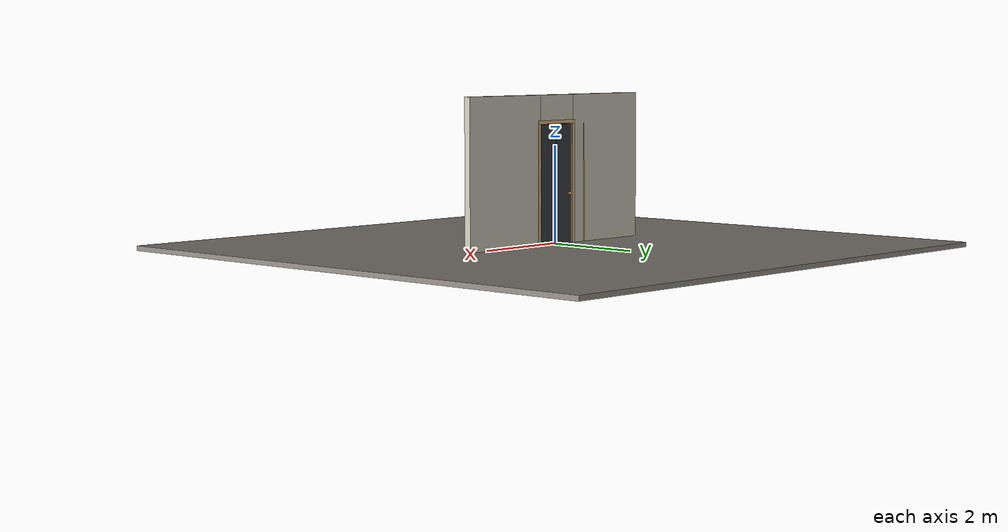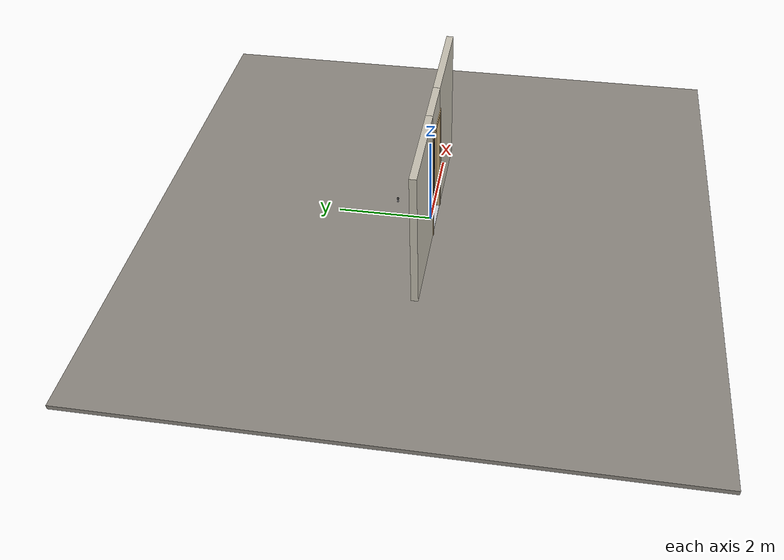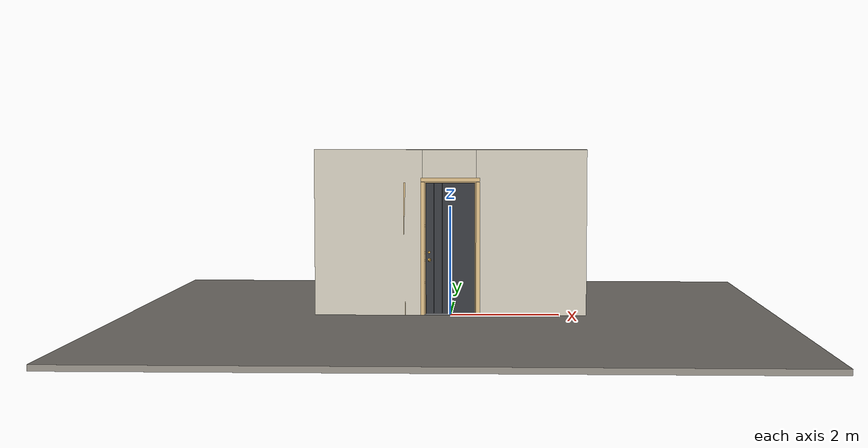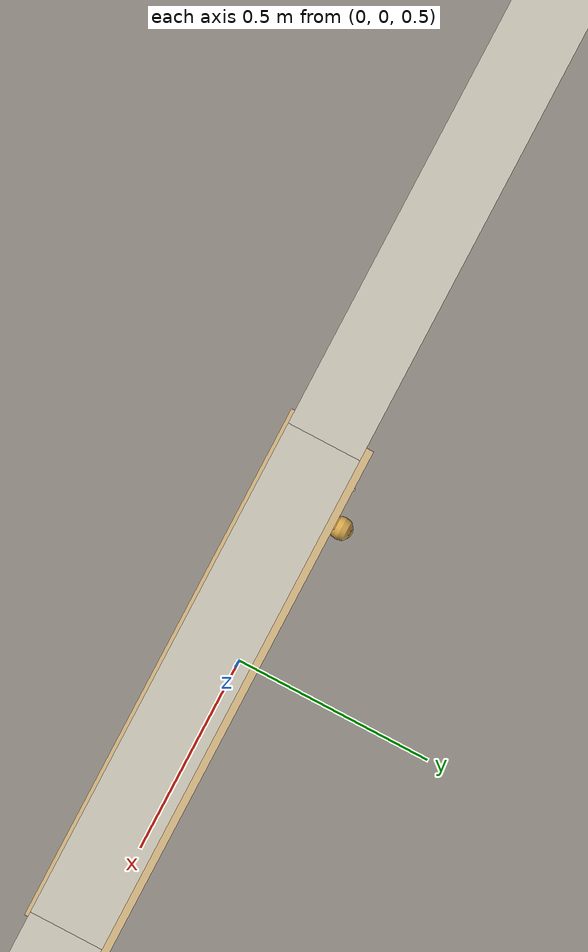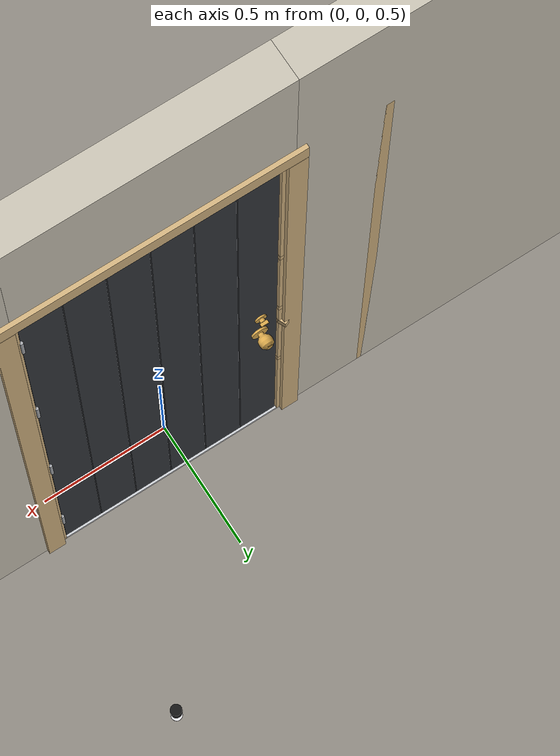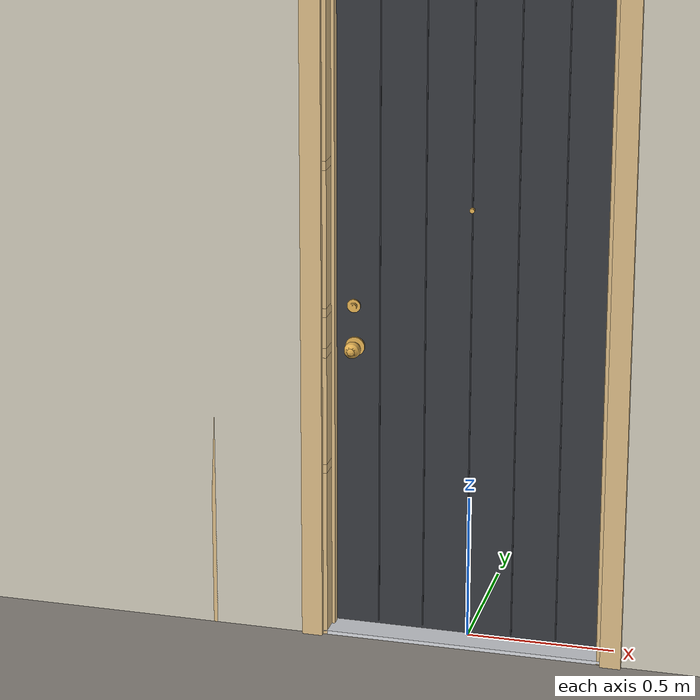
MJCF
<?xml version="1.0" ?>
<mujoco model="db0808_swing_single_full">
  <compiler angle="radian" meshdir="../../hardware" texturedir="../../textures" autolimits="true" inertiafromgeom="false"/>
  <option timestep="0.002" integrator="implicitfast" cone="elliptic" impratio="10" noslip_iterations="3">
    <flag multiccd="enable"/>
  </option>
  <size memory="16M"/>
  <default>
    <geom condim="4" solref="0.005 1" solimp="0.95 0.99 0.001"/>
    <joint solreflimit="0.005 1" solimplimit="0.95 0.99 0.001"/>
    <tendon solreflimit="0.005 1"/>
    <equality solref="0.002 1"/>
  </default>
  <visual>
    <headlight ambient="0.4 0.4 0.4" diffuse="0.7 0.7 0.7" specular="0.2 0.2 0.2"/>
    <quality shadowsize="4096"/>
    <map znear="0.01" zfar="60"/>
  </visual>
  <asset>
    <mesh name="cyl_face_e9e5036966" file="cyl_face_e9e5036966.obj"/>
    <mesh name="hinge_2af0f4d6ca" file="hinge_2af0f4d6ca.obj"/>
    <mesh name="hinge_jamb_c0c0a62ada" file="hinge_jamb_c0c0a62ada.obj"/>
    <mesh name="knob_d1888f6f03" file="knob_d1888f6f03.obj"/>
    <mesh name="peephole_f829311a59" file="peephole_f829311a59.obj"/>
    <mesh name="thumbturn_eb5c9899a3" file="thumbturn_eb5c9899a3.obj"/>
    <material name="mat_floor" rgba="0.55 0.53 0.5 1" specular="0.2" shininess="0.15" reflectance="0"/>
    <material name="mat_wall" rgba="0.78 0.76 0.7 1" specular="0.2" shininess="0.1" reflectance="0"/>
    <material name="mat_leaf" rgba="0.2 0.21 0.23 1" specular="0.2" shininess="0.61" reflectance="0"/>
    <material name="mat_leaf_brace" rgba="0.18 0.189 0.207 1" specular="0.2" shininess="0.2" reflectance="0"/>
    <material name="mat_hinge" rgba="0.65 0.66 0.68 1" specular="0.74" shininess="0.5" reflectance="0.36"/>
    <material name="mat_op_brass" rgba="0.85 0.66 0.3 1" specular="0.8" shininess="0.75" reflectance="0.4"/>
    <material name="mat_trim" rgba="0.85 0.66 0.3 1" specular="0.8" shininess="0.75" reflectance="0.4"/>
    <material name="mat_bolt" rgba="0.85 0.66 0.3 1" specular="0.8" shininess="0.75" reflectance="0.4"/>
    <material name="mat_deadbolt" rgba="0.85 0.66 0.3 1" specular="0.8" shininess="0.75" reflectance="0.4"/>
    <material name="mat_frame" rgba="0.82 0.7 0.5 1" specular="0.2" shininess="0.45" reflectance="0"/>
    <material name="mat_seal" rgba="0.1 0.1 0.1 1" specular="0.2" shininess="0.1" reflectance="0"/>
    <material name="mat_threshold" rgba="0.8 0.81 0.83 1" specular="0.8" shininess="0.6" reflectance="0.4"/>
    <material name="mat_peephole" rgba="0.85 0.66 0.3 1" specular="0.8" shininess="0.75" reflectance="0.4"/>
    <material name="mat_sidelite" rgba="0.85 0.92 0.95 0.25" specular="0.2" shininess="0.95" reflectance="0.1"/>
    <material name="mat_bumper_stop" rgba="0.08 0.08 0.08 1" specular="0.2" shininess="0.1" reflectance="0"/>
    <material name="mat_stop_base" rgba="0.9 0.9 0.92 1" specular="0.8" shininess="0.9" reflectance="0.4"/>
    <texture name="skybox" type="skybox" builtin="gradient" rgb1="0.6 0.7 0.85" rgb2="0.9 0.92 0.95" width="256" height="256"/>
  </asset>
  <worldbody>
    <light name="sun" pos="1.5 -2.5 4" dir="-0.3 0.5 -0.8" directional="true" diffuse="0.8 0.8 0.8" specular="0.3 0.3 0.3" castshadow="true"/>
    <light name="fill" pos="-1.5 2.5 3" dir="0.3 -0.5 -0.7" directional="true" diffuse="0.35 0.35 0.4" castshadow="false"/>
    <camera name="robot_view" pos="0 -2.966312 2.043887" xyaxes="1 0 0 0 0.26963 0.962964" fovy="52"/>
    <camera name="far_view" pos="0 2.879313 2.043887" xyaxes="-1 0 0 0 -0.26963 0.962964" fovy="52"/>
    <camera name="iso" pos="-2.221337 -2.498663 2.511538" xyaxes="0.741536 -0.670913 0 0.242917 0.268487 0.932151" fovy="46"/>
    <camera name="detail_handle" pos="-0.2065 -0.8685 1.296" xyaxes="0.97561 0.219512 0 -0.070934 0.315262 0.94635" fovy="38"/>
    <geom name="floor" type="box" size="6 6 0.05" pos="0 0 -0.05" material="mat_floor" group="0" contype="1" conaffinity="1" friction="0.8 0.005 0.0001" density="2400"/>
    <geom name="wall_left" type="box" size="0.99525 0.0725 1.5255" pos="-1.50475 -0.0435 1.5255" material="mat_wall" group="0" contype="1" conaffinity="1" friction="0.6 0.005 0.0001" density="800"/>
    <geom name="wall_right" type="box" size="1.01025 0.0725 1.5255" pos="1.48975 -0.0435 1.5255" material="mat_wall" group="0" contype="1" conaffinity="1" friction="0.6 0.005 0.0001" density="800"/>
    <geom name="wall_header" type="box" size="0.4945 0.0725 0.2755" pos="-0.015 -0.0435 2.7755" material="mat_wall" group="0" contype="1" conaffinity="1" friction="0.6 0.005 0.0001" density="800"/>
    <geom name="hinge_0_jamb" type="mesh" mesh="hinge_jamb_c0c0a62ada" pos="0.4575 0.029 0.267" quat="0 0 0 1" material="mat_hinge" group="1" contype="0" conaffinity="0" density="7850"/>
    <geom name="hinge_1_jamb" type="mesh" mesh="hinge_jamb_c0c0a62ada" pos="0.4575 0.029 0.933667" quat="0 0 0 1" material="mat_hinge" group="1" contype="0" conaffinity="0" density="7850"/>
    <geom name="hinge_2_jamb" type="mesh" mesh="hinge_jamb_c0c0a62ada" pos="0.4575 0.029 1.600333" quat="0 0 0 1" material="mat_hinge" group="1" contype="0" conaffinity="0" density="7850"/>
    <geom name="hinge_3_jamb" type="mesh" mesh="hinge_jamb_c0c0a62ada" pos="0.4575 0.029 2.267" quat="0 0 0 1" material="mat_hinge" group="1" contype="0" conaffinity="0" density="7850"/>
    <geom name="leaf_deadbolt_strike_b" type="box" size="0.0155 0.003 0.0005" pos="-0.46 0 1.1375" quat="0.5 0.5 0.5 0.5" material="mat_deadbolt" group="1" contype="0" conaffinity="0" density="7800"/>
    <geom name="leaf_deadbolt_strike_l" type="box" size="0.003 0.0155 0.0005" pos="-0.46 -0.0125 1.156" quat="0.5 0.5 0.5 0.5" material="mat_deadbolt" group="1" contype="0" conaffinity="0" density="7800"/>
    <geom name="leaf_deadbolt_strike_t" type="box" size="0.0155 0.003 0.0005" pos="-0.46 0 1.1745" quat="0.5 0.5 0.5 0.5" material="mat_deadbolt" group="1" contype="0" conaffinity="0" density="7800"/>
    <geom name="leaf_deadbolt_strike_r" type="box" size="0.003 0.0155 0.0005" pos="-0.46 0.0125 1.156" quat="0.5 0.5 0.5 0.5" material="mat_deadbolt" group="1" contype="0" conaffinity="0" density="7800"/>
    <geom name="leaf_multipoint_upper_strike_b" type="box" size="0.0155 0.003 0.0005" pos="-0.46 0 1.6375" quat="0.5 0.5 0.5 0.5" material="mat_deadbolt" group="1" contype="0" conaffinity="0" density="7800"/>
    <geom name="leaf_multipoint_upper_strike_l" type="box" size="0.003 0.0155 0.0005" pos="-0.46 -0.0125 1.656" quat="0.5 0.5 0.5 0.5" material="mat_deadbolt" group="1" contype="0" conaffinity="0" density="7800"/>
    <geom name="leaf_multipoint_upper_strike_t" type="box" size="0.0155 0.003 0.0005" pos="-0.46 0 1.6745" quat="0.5 0.5 0.5 0.5" material="mat_deadbolt" group="1" contype="0" conaffinity="0" density="7800"/>
    <geom name="leaf_multipoint_upper_strike_r" type="box" size="0.003 0.0155 0.0005" pos="-0.46 0.0125 1.656" quat="0.5 0.5 0.5 0.5" material="mat_deadbolt" group="1" contype="0" conaffinity="0" density="7800"/>
    <geom name="leaf_multipoint_lower_strike_b" type="box" size="0.0155 0.003 0.0005" pos="-0.46 0 0.5875" quat="0.5 0.5 0.5 0.5" material="mat_deadbolt" group="1" contype="0" conaffinity="0" density="7800"/>
    <geom name="leaf_multipoint_lower_strike_l" type="box" size="0.003 0.0155 0.0005" pos="-0.46 -0.0125 0.606" quat="0.5 0.5 0.5 0.5" material="mat_deadbolt" group="1" contype="0" conaffinity="0" density="7800"/>
    <geom name="leaf_multipoint_lower_strike_t" type="box" size="0.0155 0.003 0.0005" pos="-0.46 0 0.6245" quat="0.5 0.5 0.5 0.5" material="mat_deadbolt" group="1" contype="0" conaffinity="0" density="7800"/>
    <geom name="leaf_multipoint_lower_strike_r" type="box" size="0.003 0.0155 0.0005" pos="-0.46 0.0125 0.606" quat="0.5 0.5 0.5 0.5" material="mat_deadbolt" group="1" contype="0" conaffinity="0" density="7800"/>
    <geom name="jamb_hinge" type="box" size="0.0095 0.0725 1.2255" pos="0.47 -0.0435 1.2255" material="mat_frame" group="0" contype="1" conaffinity="1" friction="0.6 0.005 0.0001" density="400"/>
    <geom name="strike_606_wall_n" type="box" size="0.0245 0.05325 0.0155" pos="-0.485 -0.06275 0.606" material="mat_frame" group="0" contype="1" conaffinity="1" friction="0.6 0.005 0.0001" density="400"/>
    <geom name="strike_606_wall_p" type="box" size="0.0245 0.00975 0.0155" pos="-0.485 0.01925 0.606" material="mat_frame" group="0" contype="1" conaffinity="1" friction="0.6 0.005 0.0001" density="400"/>
    <geom name="strike_606_back" type="box" size="0.0125 0.0095 0.0155" pos="-0.497 0 0.606" material="mat_frame" group="0" contype="1" conaffinity="1" friction="0.6 0.005 0.0001" density="400"/>
    <geom name="strike_1016_wall_n" type="box" size="0.0245 0.054075 0.0167" pos="-0.485 -0.061925 1.016" material="mat_frame" group="0" contype="1" conaffinity="1" friction="0.6 0.005 0.0001" density="400"/>
    <geom name="strike_1016_wall_p" type="box" size="0.0245 0.008 0.0167" pos="-0.485 0.01585 1.016" material="mat_frame" group="0" contype="1" conaffinity="1" friction="0.6 0.005 0.0001" density="400"/>
    <geom name="strike_1016_ramp" type="box" size="0.0245 0.01649 0.0167" pos="-0.489636 0.028673 1.016" quat="0.977148 0 0 0.212558" material="mat_frame" group="0" contype="1" conaffinity="1" friction="0.12 0.005 0.0001" density="400"/>
    <geom name="strike_1016_back" type="box" size="0.01615 0.00785 0.0167" pos="-0.49335 0 1.016" material="mat_frame" group="0" contype="1" conaffinity="1" friction="0.6 0.005 0.0001" density="400"/>
    <geom name="strike_1156_wall_n" type="box" size="0.0245 0.05325 0.0155" pos="-0.485 -0.06275 1.156" material="mat_frame" group="0" contype="1" conaffinity="1" friction="0.6 0.005 0.0001" density="400"/>
    <geom name="strike_1156_wall_p" type="box" size="0.0245 0.00975 0.0155" pos="-0.485 0.01925 1.156" material="mat_frame" group="0" contype="1" conaffinity="1" friction="0.6 0.005 0.0001" density="400"/>
    <geom name="strike_1156_back" type="box" size="0.0125 0.0095 0.0155" pos="-0.497 0 1.156" material="mat_frame" group="0" contype="1" conaffinity="1" friction="0.6 0.005 0.0001" density="400"/>
    <geom name="strike_1656_wall_n" type="box" size="0.0245 0.05325 0.0155" pos="-0.485 -0.06275 1.656" material="mat_frame" group="0" contype="1" conaffinity="1" friction="0.6 0.005 0.0001" density="400"/>
    <geom name="strike_1656_wall_p" type="box" size="0.0245 0.00975 0.0155" pos="-0.485 0.01925 1.656" material="mat_frame" group="0" contype="1" conaffinity="1" friction="0.6 0.005 0.0001" density="400"/>
    <geom name="strike_1656_back" type="box" size="0.0125 0.0095 0.0155" pos="-0.497 0 1.656" material="mat_frame" group="0" contype="1" conaffinity="1" friction="0.6 0.005 0.0001" density="400"/>
    <geom name="jamb_strike_0" type="box" size="0.0245 0.0725 0.29525" pos="-0.485 -0.0435 0.29525" material="mat_frame" group="0" contype="1" conaffinity="1" friction="0.6 0.005 0.0001" density="400"/>
    <geom name="jamb_strike_1" type="box" size="0.0245 0.0725 0.1889" pos="-0.485 -0.0435 0.8104" material="mat_frame" group="0" contype="1" conaffinity="1" friction="0.6 0.005 0.0001" density="400"/>
    <geom name="jamb_strike_2" type="box" size="0.0245 0.0725 0.0539" pos="-0.485 -0.0435 1.0866" material="mat_frame" group="0" contype="1" conaffinity="1" friction="0.6 0.005 0.0001" density="400"/>
    <geom name="jamb_strike_3" type="box" size="0.0245 0.0725 0.2345" pos="-0.485 -0.0435 1.406" material="mat_frame" group="0" contype="1" conaffinity="1" friction="0.6 0.005 0.0001" density="400"/>
    <geom name="jamb_strike_4" type="box" size="0.0245 0.0725 0.38975" pos="-0.485 -0.0435 2.06125" material="mat_frame" group="0" contype="1" conaffinity="1" friction="0.6 0.005 0.0001" density="400"/>
    <geom name="jamb_head" type="box" size="0.4945 0.0725 0.0095" pos="-0.015 -0.0435 2.4605" material="mat_frame" group="0" contype="1" conaffinity="1" friction="0.6 0.005 0.0001" density="400"/>
    <geom name="head_stud" type="box" size="0.4945 0.0725 0.015" pos="-0.015 -0.0435 2.485" material="mat_wall" group="0" contype="1" conaffinity="1" friction="0.6 0.005 0.0001" density="500"/>
    <geom name="stop_hinge" type="box" size="0.0055 0.016 1.2255" pos="0.455 -0.0385 1.2255" material="mat_frame" group="0" contype="1" conaffinity="1" friction="0.6 0.005 0.0001" density="400"/>
    <geom name="stop_strike" type="box" size="0.0055 0.016 1.2255" pos="-0.455 -0.0385 1.2255" material="mat_frame" group="0" contype="1" conaffinity="1" friction="0.6 0.005 0.0001" density="400"/>
    <geom name="stop_head" type="box" size="0.4605 0.016 0.0055" pos="0 -0.0385 2.4455" material="mat_frame" group="0" contype="1" conaffinity="1" friction="0.6 0.005 0.0001" density="400"/>
    <geom name="seal_hinge" type="box" size="0.004 0.0015 1.2255" pos="0.4575 -0.0235 1.2255" material="mat_seal" group="1" contype="0" conaffinity="0" density="1100"/>
    <geom name="seal_strike" type="box" size="0.004 0.0015 1.2255" pos="-0.4575 -0.0235 1.2255" material="mat_seal" group="1" contype="0" conaffinity="0" density="1100"/>
    <geom name="seal_head" type="box" size="0.4405 0.0015 0.008" pos="0 -0.0235 2.439" material="mat_seal" group="1" contype="0" conaffinity="0" density="1100"/>
    <geom name="casing_l_n" type="box" size="0.035 0.008 1.235" pos="-0.5095 -0.124 1.2255" material="mat_frame" group="2" contype="0" conaffinity="0" density="400"/>
    <geom name="casing_r_n" type="box" size="0.035 0.008 1.235" pos="0.5095 -0.124 1.2255" material="mat_frame" group="2" contype="0" conaffinity="0" density="400"/>
    <geom name="casing_h_n" type="box" size="0.5445 0.008 0.035" pos="0 -0.124 2.5" material="mat_frame" group="2" contype="0" conaffinity="0" density="400"/>
    <geom name="casing_l_p" type="box" size="0.035 0.008 1.235" pos="-0.5095 0.037 1.2255" material="mat_frame" group="2" contype="0" conaffinity="0" density="400"/>
    <geom name="casing_r_p" type="box" size="0.035 0.008 1.235" pos="0.5095 0.037 1.2255" material="mat_frame" group="2" contype="0" conaffinity="0" density="400"/>
    <geom name="casing_h_p" type="box" size="0.5445 0.008 0.035" pos="0 0.037 2.5" material="mat_frame" group="2" contype="0" conaffinity="0" density="400"/>
    <geom name="threshold" type="box" size="0.4795 0.0725 0.0065" pos="0 -0.0435 0.0065" material="mat_threshold" group="0" contype="1" conaffinity="1" friction="0.5 0.005 0.0001" density="2700"/>
    <geom name="sidelite_glass" type="box" size="0.15 0.003 1.1755" pos="-0.6705 0 1.2255" material="mat_sidelite" group="0" contype="1" conaffinity="1" friction="0.6 0.005 0.0001" density="2500"/>
    <geom name="sidelite_frame" type="box" size="0.02 0.0725 1.2255" pos="-0.8405 -0.0435 1.2255" material="mat_frame" group="0" contype="1" conaffinity="1" friction="0.6 0.005 0.0001" density="600"/>
    <geom name="door_stop_base" type="cylinder" size="0.022 0.003" pos="0.4745 0.8059 0.003" material="mat_stop_base" group="0" contype="1" conaffinity="1" friction="0.6 0.005 0.0001" density="7850"/>
    <geom name="door_stop_post" type="cylinder" size="0.012 0.0255" pos="0.4745 0.8059 0.0315" material="mat_stop_base" group="0" contype="1" conaffinity="1" friction="0.6 0.005 0.0001" density="7850"/>
    <geom name="door_stop_bumper" type="cylinder" size="0.022 0.02" pos="0.4745 0.8059 0.077" material="mat_bumper_stop" group="0" contype="1" conaffinity="1" friction="0.6 0.005 0.0001" density="1100"/>
    <site name="approach_point" pos="0 -1.5 0" quat="1 0 0 0" size="0.05" rgba="0.2 0.9 0.2 0.5" group="4"/>
    <site name="goal_point" pos="0 1.5 0" quat="1 0 0 0" size="0.05" rgba="0.2 0.9 0.2 0.5" group="4"/>
    <site name="door_plane_center" pos="0 0 1.2255" quat="1 0 0 0" size="0.02" rgba="0.2 0.9 0.2 0.5" group="4"/>
    <body name="leaf" pos="0.4605 0 0">
      <inertial pos="-0.457914 0.000186 1.232387" mass="33.066064" quat="0.500286 0.499112 0.500875 -0.499725" diaginertia="2.458109446 16.23217771 18.679150518"/>
      <joint name="leaf_hinge" type="hinge" axis="0 0 -1" pos="-0.003 0.029 0" limited="true" range="0 1.570796" solreflimit="0.02 1" damping="0.357281" frictionloss="1.054164" armature="0.02"/>
      <geom name="leaf_slab" type="box" size="0.457 0.022 1.215" pos="-0.46 0 1.232" material="mat_leaf" group="0" contype="1" conaffinity="1" friction="0.4 0.005 0.0001" density="1"/>
      <geom name="leaf_plank_gap_1" type="box" size="0.002 0.023 1.205" pos="-0.155333 0 1.232" material="mat_leaf_brace" group="1" contype="0" conaffinity="0" density="1"/>
      <geom name="leaf_plank_gap_2" type="box" size="0.002 0.023 1.205" pos="-0.307667 0 1.232" material="mat_leaf_brace" group="1" contype="0" conaffinity="0" density="1"/>
      <geom name="leaf_plank_gap_3" type="box" size="0.002 0.023 1.205" pos="-0.46 0 1.232" material="mat_leaf_brace" group="1" contype="0" conaffinity="0" density="1"/>
      <geom name="leaf_plank_gap_4" type="box" size="0.002 0.023 1.205" pos="-0.612333 0 1.232" material="mat_leaf_brace" group="1" contype="0" conaffinity="0" density="1"/>
      <geom name="leaf_plank_gap_5" type="box" size="0.002 0.023 1.205" pos="-0.764667 0 1.232" material="mat_leaf_brace" group="1" contype="0" conaffinity="0" density="1"/>
      <geom name="hinge_0" type="mesh" mesh="hinge_2af0f4d6ca" pos="-0.003 0.029 0.267" quat="0 0 0 1" material="mat_hinge" group="1" contype="0" conaffinity="0" density="7850"/>
      <geom name="hinge_1" type="mesh" mesh="hinge_2af0f4d6ca" pos="-0.003 0.029 0.933667" quat="0 0 0 1" material="mat_hinge" group="1" contype="0" conaffinity="0" density="7850"/>
      <geom name="hinge_2" type="mesh" mesh="hinge_2af0f4d6ca" pos="-0.003 0.029 1.600333" quat="0 0 0 1" material="mat_hinge" group="1" contype="0" conaffinity="0" density="7850"/>
      <geom name="hinge_3" type="mesh" mesh="hinge_2af0f4d6ca" pos="-0.003 0.029 2.267" quat="0 0 0 1" material="mat_hinge" group="1" contype="0" conaffinity="0" density="7850"/>
      <geom name="leaf_latch_bolt_faceplate" type="box" size="0.0006 0.01235 0.0267" pos="-0.9164 0 1.016" material="mat_bolt" group="1" contype="0" conaffinity="0" density="8500"/>
      <geom name="leaf_deadbolt_faceplate" type="box" size="0.0006 0.014 0.0245" pos="-0.9164 0 1.156" material="mat_deadbolt" group="1" contype="0" conaffinity="0" density="8500"/>
      <geom name="leaf_deadbolt_cylinder_face" type="mesh" mesh="cyl_face_e9e5036966" pos="-0.852 -0.022 1.156" quat="0 0 -0.707107 0.707107" material="mat_deadbolt" group="1" contype="0" conaffinity="0" density="7100"/>
      <geom name="leaf_multipoint_upper_faceplate" type="box" size="0.0006 0.014 0.0245" pos="-0.9164 0 1.656" material="mat_deadbolt" group="1" contype="0" conaffinity="0" density="8500"/>
      <geom name="leaf_multipoint_lower_faceplate" type="box" size="0.0006 0.014 0.0245" pos="-0.9164 0 0.606" material="mat_deadbolt" group="1" contype="0" conaffinity="0" density="8500"/>
      <geom name="leaf_multipoint_strip" type="box" size="0.0004 0.01 1.195" pos="-0.9166 0 1.232" material="mat_deadbolt" group="1" contype="0" conaffinity="0" density="8500"/>
      <geom name="peephole" type="mesh" mesh="peephole_f829311a59" pos="-0.46 -0.022 1.517" quat="0 0 -0.707107 0.707107" material="mat_peephole" group="2" contype="0" conaffinity="0" density="8500"/>
      <site name="leaf_edge_mid" pos="-0.917 0 1.215" quat="1 0 0 0" size="0.02" rgba="0.2 0.9 0.2 0.5" group="4"/>
      <body name="leaf_handle" pos="-0.847 0 1.016">
        <inertial pos="0 0 0" mass="1.151952" quat="0.707107 0 0 -0.707107" diaginertia="0.000312514 0.004264603 0.004264603"/>
        <joint name="leaf_handle_hinge" type="hinge" axis="0 1 0" limited="true" range="0 0.87" damping="0.143614" frictionloss="0.038" stiffness="0.5" springref="-0.5" armature="0.01"/>
        <geom name="leaf_handle_spindle" type="cylinder" size="0.006 0.03" pos="0 0 0" quat="0.707107 -0.707107 0 0" material="mat_op_brass" group="1" contype="0" conaffinity="0" density="7850"/>
        <geom name="leaf_handle_knob_n" type="mesh" mesh="knob_d1888f6f03" pos="0 -0.022 0" quat="0 0 -0.707107 0.707107" material="mat_op_brass" group="1" contype="0" conaffinity="0" density="3000"/>
        <geom name="leaf_handle_knob_col_n" type="sphere" size="0.0243" pos="0 -0.0685 0" material="mat_op_brass" group="0" contype="1" conaffinity="1" friction="0.9 0.01 0.0001" density="3000"/>
        <geom name="leaf_handle_knob_neck_n" type="cylinder" size="0.011 0.012" pos="0 -0.034 0" quat="0.707107 -0.707107 0 0" material="mat_op_brass" group="3" contype="1" conaffinity="1" rgba="0.8 0.3 0.3 0.25" friction="0.6 0.005 0.0001" density="3000"/>
        <geom name="leaf_handle_knob_p" type="mesh" mesh="knob_d1888f6f03" pos="0 0.022 0" quat="0 0 0.707107 0.707107" material="mat_op_brass" group="1" contype="0" conaffinity="0" density="3000"/>
        <geom name="leaf_handle_knob_col_p" type="sphere" size="0.0243" pos="0 0.0685 0" material="mat_op_brass" group="0" contype="1" conaffinity="1" friction="0.9 0.01 0.0001" density="3000"/>
        <geom name="leaf_handle_knob_neck_p" type="cylinder" size="0.011 0.012" pos="0 0.034 0" quat="0.707107 -0.707107 0 0" material="mat_op_brass" group="3" contype="1" conaffinity="1" rgba="0.8 0.3 0.3 0.25" friction="0.6 0.005 0.0001" density="3000"/>
        <site name="leaf_handle_grip_n" pos="0 -0.0685 0" quat="1 0 0 0" size="0.012" rgba="0.2 0.9 0.2 0.5" group="4"/>
        <site name="leaf_handle_grip_p" pos="0 0.0685 0" quat="1 0 0 0" size="0.012" rgba="0.2 0.9 0.2 0.5" group="4"/>
      </body>
      <body name="leaf_latch_bolt" pos="-0.917 0 1.016">
        <inertial pos="0.00865 0 0" mass="0.041419" quat="0.92388 0.382683 0 0" diaginertia="0.000000798 0.000005598 0.000005598"/>
        <joint name="leaf_latch_bolt_slide" type="slide" axis="1 0 0" limited="true" range="0 0.0127" damping="2" frictionloss="0.3" stiffness="300" springref="-0.008333" armature="0.1"/>
        <geom name="leaf_latch_bolt_capsule" type="capsule" size="0.00635 0.015" pos="0.00865 0 0" quat="0.707107 0 -0.707107 0" material="mat_bolt" group="0" contype="1" conaffinity="1" friction="0.2 0.005 0.0001" density="8500"/>
      </body>
      <body name="leaf_deadbolt" pos="-0.917 0 1.156">
        <inertial pos="0.025 0 0" mass="0.17" quat="0 0 0.707107 0.707107" diaginertia="0.000012481 0.000039043 0.000044271"/>
        <joint name="leaf_deadbolt_slide" type="slide" axis="1 0 0" limited="true" range="0 0.02" damping="5" frictionloss="1.5" armature="0.1" ref="0.02"/>
        <geom name="leaf_deadbolt_box" type="box" size="0.025 0.008 0.0125" pos="0.025 0 0" material="mat_deadbolt" group="0" contype="1" conaffinity="1" friction="0.3 0.005 0.0001" density="8500"/>
      </body>
      <body name="leaf_deadbolt_thumbturn" pos="-0.852 0.022 1.156">
        <inertial pos="0 0.012928 0" mass="0.178946" quat="0.000001 -0.707107 0.707107 -0.000001" diaginertia="0.000026045 0.000026215 0.000032438"/>
        <joint name="leaf_deadbolt_thumbturn_hinge" type="hinge" axis="0 -1 0" limited="true" range="0 1.5708" damping="0.05" frictionloss="0.3" armature="0.005" ref="1.5708"/>
        <geom name="leaf_deadbolt_thumbturn_mesh" type="mesh" mesh="thumbturn_eb5c9899a3" pos="0 0 0" quat="0.500001 -0.500001 0.499999 0.499999" material="mat_deadbolt" group="0" contype="1" conaffinity="1" friction="0.6 0.005 0.0001" density="7100"/>
        <geom name="leaf_deadbolt_thumbturn_col" type="box" size="0.006 0.012 0.016" pos="0 0.02 0" quat="0.707105 0 -0.707108 0" material="mat_deadbolt" group="3" contype="1" conaffinity="1" rgba="0.8 0.3 0.3 0.25" friction="0.6 0.005 0.0001" density="7100"/>
      </body>
      <body name="leaf_multipoint_upper" pos="-0.917 0 1.656">
        <inertial pos="0.025 0 0" mass="0.17" quat="0 0 0.707107 0.707107" diaginertia="0.000012481 0.000039043 0.000044271"/>
        <joint name="leaf_multipoint_upper_slide" type="slide" axis="1 0 0" limited="true" range="0 0.02" damping="5" frictionloss="1.5" armature="0.1" ref="0.02"/>
        <geom name="leaf_multipoint_upper_box" type="box" size="0.025 0.008 0.0125" pos="0.025 0 0" material="mat_deadbolt" group="0" contype="1" conaffinity="1" friction="0.3 0.005 0.0001" density="8500"/>
      </body>
      <body name="leaf_multipoint_lower" pos="-0.917 0 0.606">
        <inertial pos="0.025 0 0" mass="0.17" quat="0 0 0.707107 0.707107" diaginertia="0.000012481 0.000039043 0.000044271"/>
        <joint name="leaf_multipoint_lower_slide" type="slide" axis="1 0 0" limited="true" range="0 0.02" damping="5" frictionloss="1.5" armature="0.1" ref="0.02"/>
        <geom name="leaf_multipoint_lower_box" type="box" size="0.025 0.008 0.0125" pos="0.025 0 0" material="mat_deadbolt" group="0" contype="1" conaffinity="1" friction="0.3 0.005 0.0001" density="8500"/>
      </body>
    </body>
  </worldbody>
  <tendon>
    <fixed name="leaf_latch_bolt_coupling" limited="true" range="0 10">
      <joint joint="leaf_latch_bolt_slide" coef="1"/>
      <joint joint="leaf_handle_hinge" coef="-0.015679"/>
    </fixed>
  </tendon>
  <equality>
    <joint name="leaf_deadbolt_couple" joint1="leaf_deadbolt_slide" joint2="leaf_deadbolt_thumbturn_hinge" polycoef="0 0.012732 0 0 0" active="true"/>
    <joint name="leaf_multipoint_upper_couple" joint1="leaf_multipoint_upper_slide" joint2="leaf_deadbolt_slide" polycoef="0 1 0 0 0" active="true"/>
    <joint name="leaf_multipoint_lower_couple" joint1="leaf_multipoint_lower_slide" joint2="leaf_deadbolt_slide" polycoef="0 1 0 0 0" active="true"/>
  </equality>
  <contact>
    <exclude body1="leaf_deadbolt" body2="leaf_deadbolt_thumbturn"/>
  </contact>
  <sensor>
    <jointpos name="leaf_hinge_pos" joint="leaf_hinge"/>
    <jointvel name="leaf_hinge_vel" joint="leaf_hinge"/>
    <jointpos name="leaf_handle_hinge_pos" joint="leaf_handle_hinge"/>
    <jointvel name="leaf_handle_hinge_vel" joint="leaf_handle_hinge"/>
    <jointpos name="leaf_latch_bolt_slide_pos" joint="leaf_latch_bolt_slide"/>
    <jointvel name="leaf_latch_bolt_slide_vel" joint="leaf_latch_bolt_slide"/>
    <jointpos name="leaf_deadbolt_slide_pos" joint="leaf_deadbolt_slide"/>
    <jointvel name="leaf_deadbolt_slide_vel" joint="leaf_deadbolt_slide"/>
    <jointpos name="leaf_deadbolt_thumbturn_hinge_pos" joint="leaf_deadbolt_thumbturn_hinge"/>
    <jointvel name="leaf_deadbolt_thumbturn_hinge_vel" joint="leaf_deadbolt_thumbturn_hinge"/>
    <jointpos name="leaf_multipoint_upper_slide_pos" joint="leaf_multipoint_upper_slide"/>
    <jointvel name="leaf_multipoint_upper_slide_vel" joint="leaf_multipoint_upper_slide"/>
    <jointpos name="leaf_multipoint_lower_slide_pos" joint="leaf_multipoint_lower_slide"/>
    <jointvel name="leaf_multipoint_lower_slide_vel" joint="leaf_multipoint_lower_slide"/>
  </sensor>
</mujoco>
